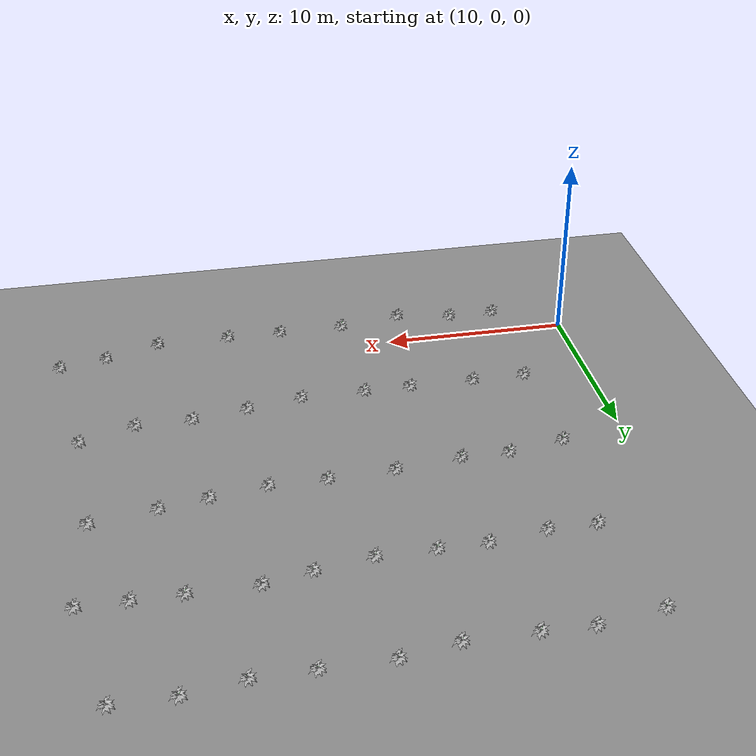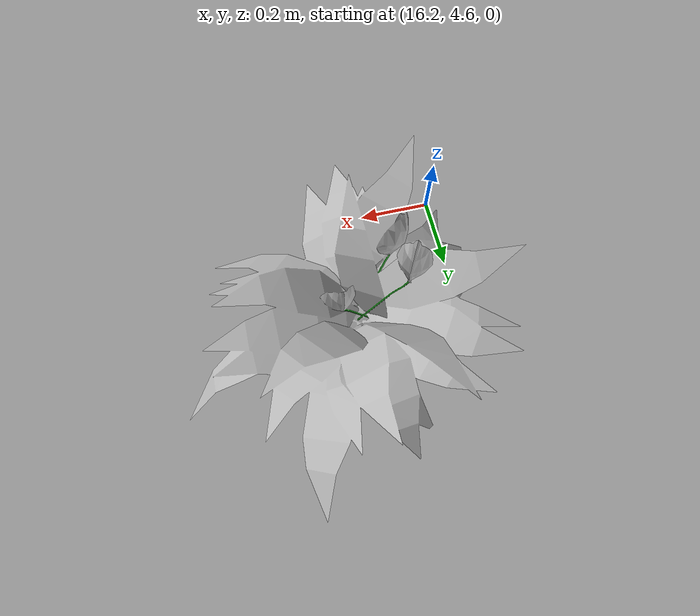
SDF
<sdf version="1.3">
 <world name="default">
  <scene>
   <grid>0</grid>
   <shadows>1</shadows>
   <ambient>0.200000 0.200000 0.200000 1.000000</ambient>
   <background>0.900000 0.900000 0.900000 1.000000</background>
  </scene>
  <light name="sun" type="directional">
   <pose>0.000000 0.000000 10.000000 0.000000 0.000000 0.000000</pose>
   <diffuse>0.800000 0.800000 0.800000 1.000000</diffuse>
   <specular>0.100000 0.100000 0.100000 1.000000</specular>
   <attenuation>
    <range>1000.000000</range>
    <constant>0.900000</constant>
    <linear>0.010000</linear>
    <quadratic>0.001000</quadratic>
   </attenuation>
   <direction>-0.500000 0.500000 -1.000000</direction>
  </light>
  <physics type="ode">
   <update_rate>1000.000000</update_rate>
   <gravity>0.000000 0.000000 -9.800000</gravity>
  </physics>
  <model name="sanca_ground_plane">
   <static>1</static>
   <link name="link">
    <collision name="collision">
     <geometry>
      <plane><normal>0.000000 0.000000 1.000000</normal><size>100.000000 100.000000</size></plane>
     </geometry>
     <surface><friction><ode><mu>100.000000</mu><mu2>50.000000</mu2></ode></friction></surface>
    </collision>
    <visual name="visual">
     <cast_shadows>0</cast_shadows>
     <geometry>
      <plane><normal>0.000000 0.000000 1.000000</normal><size>100.000000 100.000000</size></plane>
     </geometry>
     <material>
      <script><uri>file://media/materials/scripts/gazebo.material</uri><name>Gazebo/Grey</name></script>
     </material>
    </visual>
    <velocity_decay><linear>0.000000</linear><angular>0.000000</angular></velocity_decay>
   </link>
   <pose>-7.000000 38.000000 0.000000 0.000000 0.000000 0.000000</pose>
  </model>
  <model name="Spathaphylum">
   <pose>38.000000 26.482400 0.000000 0.000000 0.000000 0.000000</pose>
   <static>1</static>
   <link name="link">
    <inertial>
     <mass>10.000000</mass>
     <inertia>
      <ixx>1.000000</ixx>
      <ixy>0.000000</ixy>
      <ixz>0.000000</ixz>
      <iyy>1.000000</iyy>
      <iyz>0.000000</iyz>
      <izz>1.000000</izz>
     </inertia>
    </inertial>
    <visual name="visual">
     <geometry><mesh><uri>model://spathaphylum/meshes/Spathaphylum.dae</uri></mesh></geometry>
    </visual>
    <velocity_decay><linear>0.000000</linear><angular>0.000000</angular></velocity_decay>
   </link>
  </model>
  <model name="Spathaphylum_0">
   <pose>35.000000 26.496700 0.000000 0.000000 0.000000 0.000000</pose>
   <static>1</static>
   <link name="link">
    <inertial>
     <mass>10.000000</mass>
     <inertia>
      <ixx>1.000000</ixx>
      <ixy>0.000000</ixy>
      <ixz>0.000000</ixz>
      <iyy>1.000000</iyy>
      <iyz>0.000000</iyz>
      <izz>1.000000</izz>
     </inertia>
    </inertial>
    <visual name="visual">
     <geometry><mesh><uri>model://spathaphylum/meshes/Spathaphylum.dae</uri></mesh></geometry>
    </visual>
    <velocity_decay><linear>0.000000</linear><angular>0.000000</angular></velocity_decay>
   </link>
  </model>
  <model name="Spathaphylum_1">
   <pose>32.000000 26.000000 0.000000 0.000000 0.000000 0.000000</pose>
   <static>1</static>
   <link name="link">
    <inertial>
     <mass>10.000000</mass>
     <inertia>
      <ixx>1.000000</ixx>
      <ixy>0.000000</ixy>
      <ixz>0.000000</ixz>
      <iyy>1.000000</iyy>
      <iyz>0.000000</iyz>
      <izz>1.000000</izz>
     </inertia>
    </inertial>
    <visual name="visual">
     <geometry><mesh><uri>model://spathaphylum/meshes/Spathaphylum.dae</uri></mesh></geometry>
    </visual>
    <velocity_decay><linear>0.000000</linear><angular>0.000000</angular></velocity_decay>
   </link>
  </model>
  <model name="Spathaphylum_2">
   <pose>29.000000 26.000000 0.000000 0.000000 0.000000 0.000000</pose>
   <static>1</static>
   <link name="link">
    <inertial>
     <mass>10.000000</mass>
     <inertia>
      <ixx>1.000000</ixx>
      <ixy>0.000000</ixy>
      <ixz>0.000000</ixz>
      <iyy>1.000000</iyy>
      <iyz>0.000000</iyz>
      <izz>1.000000</izz>
     </inertia>
    </inertial>
    <visual name="visual">
     <geometry><mesh><uri>model://spathaphylum/meshes/Spathaphylum.dae</uri></mesh></geometry>
    </visual>
    <velocity_decay><linear>0.000000</linear><angular>0.000000</angular></velocity_decay>
   </link>
  </model>
  <model name="Spathaphylum_3">
   <pose>25.486800 26.000000 0.000000 0.000000 0.000000 0.000000</pose>
   <static>1</static>
   <link name="link">
    <inertial>
     <mass>10.000000</mass>
     <inertia>
      <ixx>1.000000</ixx>
      <ixy>0.000000</ixy>
      <ixz>0.000000</ixz>
      <iyy>1.000000</iyy>
      <iyz>0.000000</iyz>
      <izz>1.000000</izz>
     </inertia>
    </inertial>
    <visual name="visual">
     <geometry><mesh><uri>model://spathaphylum/meshes/Spathaphylum.dae</uri></mesh></geometry>
    </visual>
    <velocity_decay><linear>0.000000</linear><angular>0.000000</angular></velocity_decay>
   </link>
  </model>
  <model name="Spathaphylum_4">
   <pose>22.556600 25.467600 0.000000 0.000000 0.000000 0.000000</pose>
   <static>1</static>
   <link name="link">
    <inertial>
     <mass>10.000000</mass>
     <inertia>
      <ixx>1.000000</ixx>
      <ixy>0.000000</ixy>
      <ixz>0.000000</ixz>
      <iyy>1.000000</iyy>
      <iyz>0.000000</iyz>
      <izz>1.000000</izz>
     </inertia>
    </inertial>
    <visual name="visual">
     <geometry><mesh><uri>model://spathaphylum/meshes/Spathaphylum.dae</uri></mesh></geometry>
    </visual>
    <velocity_decay><linear>0.000000</linear><angular>0.000000</angular></velocity_decay>
   </link>
  </model>
  <model name="Spathaphylum_5">
   <pose>19.000000 25.484000 0.000000 0.000000 0.000000 0.000000</pose>
   <static>1</static>
   <link name="link">
    <inertial>
     <mass>10.000000</mass>
     <inertia>
      <ixx>1.000000</ixx>
      <ixy>0.000000</ixy>
      <ixz>0.000000</ixz>
      <iyy>1.000000</iyy>
      <iyz>0.000000</iyz>
      <izz>1.000000</izz>
     </inertia>
    </inertial>
    <visual name="visual">
     <geometry><mesh><uri>model://spathaphylum/meshes/Spathaphylum.dae</uri></mesh></geometry>
    </visual>
    <velocity_decay><linear>0.000000</linear><angular>0.000000</angular></velocity_decay>
   </link>
  </model>
  <model name="Spathaphylum_6">
   <pose>16.447800 25.581200 0.000000 0.000000 0.000000 0.000000</pose>
   <static>1</static>
   <link name="link">
    <inertial>
     <mass>10.000000</mass>
     <inertia>
      <ixx>1.000000</ixx>
      <ixy>0.000000</ixy>
      <ixz>0.000000</ixz>
      <iyy>1.000000</iyy>
      <iyz>0.000000</iyz>
      <izz>1.000000</izz>
     </inertia>
    </inertial>
    <visual name="visual">
     <geometry><mesh><uri>model://spathaphylum/meshes/Spathaphylum.dae</uri></mesh></geometry>
    </visual>
    <velocity_decay><linear>0.000000</linear><angular>0.000000</angular></velocity_decay>
   </link>
  </model>
  <model name="Spathaphylum_7">
   <pose>13.000000 25.000000 0.000000 0.000000 0.000000 0.000000</pose>
   <static>1</static>
   <link name="link">
    <inertial>
     <mass>10.000000</mass>
     <inertia>
      <ixx>1.000000</ixx>
      <ixy>0.000000</ixy>
      <ixz>0.000000</ixz>
      <iyy>1.000000</iyy>
      <iyz>0.000000</iyz>
      <izz>1.000000</izz>
     </inertia>
    </inertial>
    <visual name="visual">
     <geometry><mesh><uri>model://spathaphylum/meshes/Spathaphylum.dae</uri></mesh></geometry>
    </visual>
    <velocity_decay><linear>0.000000</linear><angular>0.000000</angular></velocity_decay>
   </link>
  </model>
  <model name="Spathaphylum_8">
   <pose>14.000000 18.564600 0.000000 0.000000 0.000000 0.000000</pose>
   <static>1</static>
   <link name="link">
    <inertial>
     <mass>10.000000</mass>
     <inertia>
      <ixx>1.000000</ixx>
      <ixy>0.000000</ixy>
      <ixz>0.000000</ixz>
      <iyy>1.000000</iyy>
      <iyz>0.000000</iyz>
      <izz>1.000000</izz>
     </inertia>
    </inertial>
    <visual name="visual">
     <geometry><mesh><uri>model://spathaphylum/meshes/Spathaphylum.dae</uri></mesh></geometry>
    </visual>
    <velocity_decay><linear>0.000000</linear><angular>0.000000</angular></velocity_decay>
   </link>
  </model>
  <model name="Spathaphylum_9">
   <pose>16.495100 18.550600 0.000000 0.000000 0.000000 0.000000</pose>
   <static>1</static>
   <link name="link">
    <inertial>
     <mass>10.000000</mass>
     <inertia>
      <ixx>1.000000</ixx>
      <ixy>0.000000</ixy>
      <ixz>0.000000</ixz>
      <iyy>1.000000</iyy>
      <iyz>0.000000</iyz>
      <izz>1.000000</izz>
     </inertia>
    </inertial>
    <visual name="visual">
     <geometry><mesh><uri>model://spathaphylum/meshes/Spathaphylum.dae</uri></mesh></geometry>
    </visual>
    <velocity_decay><linear>0.000000</linear><angular>0.000000</angular></velocity_decay>
   </link>
  </model>
  <model name="Spathaphylum_10">
   <pose>19.508700 19.000000 0.000000 0.000000 0.000000 0.000000</pose>
   <static>1</static>
   <link name="link">
    <inertial>
     <mass>10.000000</mass>
     <inertia>
      <ixx>1.000000</ixx>
      <ixy>0.000000</ixy>
      <ixz>0.000000</ixz>
      <iyy>1.000000</iyy>
      <iyz>0.000000</iyz>
      <izz>1.000000</izz>
     </inertia>
    </inertial>
    <visual name="visual">
     <geometry><mesh><uri>model://spathaphylum/meshes/Spathaphylum.dae</uri></mesh></geometry>
    </visual>
    <velocity_decay><linear>0.000000</linear><angular>0.000000</angular></velocity_decay>
   </link>
  </model>
  <model name="Spathaphylum_11">
   <pose>22.000000 19.000000 0.000000 0.000000 0.000000 0.000000</pose>
   <static>1</static>
   <link name="link">
    <inertial>
     <mass>10.000000</mass>
     <inertia>
      <ixx>1.000000</ixx>
      <ixy>0.000000</ixy>
      <ixz>0.000000</ixz>
      <iyy>1.000000</iyy>
      <iyz>0.000000</iyz>
      <izz>1.000000</izz>
     </inertia>
    </inertial>
    <visual name="visual">
     <geometry><mesh><uri>model://spathaphylum/meshes/Spathaphylum.dae</uri></mesh></geometry>
    </visual>
    <velocity_decay><linear>0.000000</linear><angular>0.000000</angular></velocity_decay>
   </link>
  </model>
  <model name="Spathaphylum_12">
   <pose>25.000000 19.000000 0.000000 0.000000 0.000000 0.000000</pose>
   <static>1</static>
   <link name="link">
    <inertial>
     <mass>10.000000</mass>
     <inertia>
      <ixx>1.000000</ixx>
      <ixy>0.000000</ixy>
      <ixz>0.000000</ixz>
      <iyy>1.000000</iyy>
      <iyz>0.000000</iyz>
      <izz>1.000000</izz>
     </inertia>
    </inertial>
    <visual name="visual">
     <geometry><mesh><uri>model://spathaphylum/meshes/Spathaphylum.dae</uri></mesh></geometry>
    </visual>
    <velocity_decay><linear>0.000000</linear><angular>0.000000</angular></velocity_decay>
   </link>
  </model>
  <model name="Spathaphylum_13">
   <pose>28.000000 19.497700 0.000000 0.000000 0.000000 0.000000</pose>
   <static>1</static>
   <link name="link">
    <inertial>
     <mass>10.000000</mass>
     <inertia>
      <ixx>1.000000</ixx>
      <ixy>0.000000</ixy>
      <ixz>0.000000</ixz>
      <iyy>1.000000</iyy>
      <iyz>0.000000</iyz>
      <izz>1.000000</izz>
     </inertia>
    </inertial>
    <visual name="visual">
     <geometry><mesh><uri>model://spathaphylum/meshes/Spathaphylum.dae</uri></mesh></geometry>
    </visual>
    <velocity_decay><linear>0.000000</linear><angular>0.000000</angular></velocity_decay>
   </link>
  </model>
  <model name="Spathaphylum_14">
   <pose>30.479400 20.000000 0.000000 0.000000 0.000000 0.000000</pose>
   <static>1</static>
   <link name="link">
    <inertial>
     <mass>10.000000</mass>
     <inertia>
      <ixx>1.000000</ixx>
      <ixy>0.000000</ixy>
      <ixz>0.000000</ixz>
      <iyy>1.000000</iyy>
      <iyz>0.000000</iyz>
      <izz>1.000000</izz>
     </inertia>
    </inertial>
    <visual name="visual">
     <geometry><mesh><uri>model://spathaphylum/meshes/Spathaphylum.dae</uri></mesh></geometry>
    </visual>
    <velocity_decay><linear>0.000000</linear><angular>0.000000</angular></velocity_decay>
   </link>
  </model>
  <model name="Spathaphylum_15">
   <pose>34.000000 20.000000 0.000000 0.000000 0.000000 0.000000</pose>
   <static>1</static>
   <link name="link">
    <inertial>
     <mass>10.000000</mass>
     <inertia>
      <ixx>1.000000</ixx>
      <ixy>0.000000</ixy>
      <ixz>0.000000</ixz>
      <iyy>1.000000</iyy>
      <iyz>0.000000</iyz>
      <izz>1.000000</izz>
     </inertia>
    </inertial>
    <visual name="visual">
     <geometry><mesh><uri>model://spathaphylum/meshes/Spathaphylum.dae</uri></mesh></geometry>
    </visual>
    <velocity_decay><linear>0.000000</linear><angular>0.000000</angular></velocity_decay>
   </link>
  </model>
  <model name="Spathaphylum_16">
   <pose>36.508000 20.000000 0.000000 0.000000 0.000000 0.000000</pose>
   <static>1</static>
   <link name="link">
    <inertial>
     <mass>10.000000</mass>
     <inertia>
      <ixx>1.000000</ixx>
      <ixy>0.000000</ixy>
      <ixz>0.000000</ixz>
      <iyy>1.000000</iyy>
      <iyz>0.000000</iyz>
      <izz>1.000000</izz>
     </inertia>
    </inertial>
    <visual name="visual">
     <geometry><mesh><uri>model://spathaphylum/meshes/Spathaphylum.dae</uri></mesh></geometry>
    </visual>
    <velocity_decay><linear>0.000000</linear><angular>0.000000</angular></velocity_decay>
   </link>
  </model>
  <model name="Spathaphylum_17">
   <pose>39.000000 20.000000 0.000000 0.000000 0.000000 0.000000</pose>
   <static>1</static>
   <link name="link">
    <inertial>
     <mass>10.000000</mass>
     <inertia>
      <ixx>1.000000</ixx>
      <ixy>0.000000</ixy>
      <ixz>0.000000</ixz>
      <iyy>1.000000</iyy>
      <iyz>0.000000</iyz>
      <izz>1.000000</izz>
     </inertia>
    </inertial>
    <visual name="visual">
     <geometry><mesh><uri>model://spathaphylum/meshes/Spathaphylum.dae</uri></mesh></geometry>
    </visual>
    <velocity_decay><linear>0.000000</linear><angular>0.000000</angular></velocity_decay>
   </link>
  </model>
  <model name="Spathaphylum_18">
   <pose>38.000000 14.000000 0.000000 0.000000 0.000000 0.000000</pose>
   <static>1</static>
   <link name="link">
    <inertial>
     <mass>10.000000</mass>
     <inertia>
      <ixx>1.000000</ixx>
      <ixy>0.000000</ixy>
      <ixz>0.000000</ixz>
      <iyy>1.000000</iyy>
      <iyz>0.000000</iyz>
      <izz>1.000000</izz>
     </inertia>
    </inertial>
    <visual name="visual">
     <geometry><mesh><uri>model://spathaphylum/meshes/Spathaphylum.dae</uri></mesh></geometry>
    </visual>
    <velocity_decay><linear>0.000000</linear><angular>0.000000</angular></velocity_decay>
   </link>
  </model>
  <model name="Spathaphylum_19">
   <pose>34.548400 13.437600 0.000000 0.000000 0.000000 0.000000</pose>
   <static>1</static>
   <link name="link">
    <inertial>
     <mass>10.000000</mass>
     <inertia>
      <ixx>1.000000</ixx>
      <ixy>0.000000</ixy>
      <ixz>0.000000</ixz>
      <iyy>1.000000</iyy>
      <iyz>0.000000</iyz>
      <izz>1.000000</izz>
     </inertia>
    </inertial>
    <visual name="visual">
     <geometry><mesh><uri>model://spathaphylum/meshes/Spathaphylum.dae</uri></mesh></geometry>
    </visual>
    <velocity_decay><linear>0.000000</linear><angular>0.000000</angular></velocity_decay>
   </link>
  </model>
  <model name="Spathaphylum_20">
   <pose>32.000000 13.000000 0.000000 0.000000 0.000000 0.000000</pose>
   <static>1</static>
   <link name="link">
    <inertial>
     <mass>10.000000</mass>
     <inertia>
      <ixx>1.000000</ixx>
      <ixy>0.000000</ixy>
      <ixz>0.000000</ixz>
      <iyy>1.000000</iyy>
      <iyz>0.000000</iyz>
      <izz>1.000000</izz>
     </inertia>
    </inertial>
    <visual name="visual">
     <geometry><mesh><uri>model://spathaphylum/meshes/Spathaphylum.dae</uri></mesh></geometry>
    </visual>
    <velocity_decay><linear>0.000000</linear><angular>0.000000</angular></velocity_decay>
   </link>
  </model>
  <model name="Spathaphylum_21">
   <pose>29.000000 12.544800 0.000000 0.000000 0.000000 0.000000</pose>
   <static>1</static>
   <link name="link">
    <inertial>
     <mass>10.000000</mass>
     <inertia>
      <ixx>1.000000</ixx>
      <ixy>0.000000</ixy>
      <ixz>0.000000</ixz>
      <iyy>1.000000</iyy>
      <iyz>0.000000</iyz>
      <izz>1.000000</izz>
     </inertia>
    </inertial>
    <visual name="visual">
     <geometry><mesh><uri>model://spathaphylum/meshes/Spathaphylum.dae</uri></mesh></geometry>
    </visual>
    <velocity_decay><linear>0.000000</linear><angular>0.000000</angular></velocity_decay>
   </link>
  </model>
  <model name="Spathaphylum_22">
   <pose>26.000000 12.561700 0.000000 0.000000 0.000000 0.000000</pose>
   <static>1</static>
   <link name="link">
    <inertial>
     <mass>10.000000</mass>
     <inertia>
      <ixx>1.000000</ixx>
      <ixy>0.000000</ixy>
      <ixz>0.000000</ixz>
      <iyy>1.000000</iyy>
      <iyz>0.000000</iyz>
      <izz>1.000000</izz>
     </inertia>
    </inertial>
    <visual name="visual">
     <geometry><mesh><uri>model://spathaphylum/meshes/Spathaphylum.dae</uri></mesh></geometry>
    </visual>
    <velocity_decay><linear>0.000000</linear><angular>0.000000</angular></velocity_decay>
   </link>
  </model>
  <model name="Spathaphylum_23">
   <pose>22.488900 12.410500 0.000000 0.000000 0.000000 0.000000</pose>
   <static>1</static>
   <link name="link">
    <inertial>
     <mass>10.000000</mass>
     <inertia>
      <ixx>1.000000</ixx>
      <ixy>0.000000</ixy>
      <ixz>0.000000</ixz>
      <iyy>1.000000</iyy>
      <iyz>0.000000</iyz>
      <izz>1.000000</izz>
     </inertia>
    </inertial>
    <visual name="visual">
     <geometry><mesh><uri>model://spathaphylum/meshes/Spathaphylum.dae</uri></mesh></geometry>
    </visual>
    <velocity_decay><linear>0.000000</linear><angular>0.000000</angular></velocity_decay>
   </link>
  </model>
  <model name="Spathaphylum_24">
   <pose>19.000000 12.000000 0.000000 0.000000 0.000000 0.000000</pose>
   <static>1</static>
   <link name="link">
    <inertial>
     <mass>10.000000</mass>
     <inertia>
      <ixx>1.000000</ixx>
      <ixy>0.000000</ixy>
      <ixz>0.000000</ixz>
      <iyy>1.000000</iyy>
      <iyz>0.000000</iyz>
      <izz>1.000000</izz>
     </inertia>
    </inertial>
    <visual name="visual">
     <geometry><mesh><uri>model://spathaphylum/meshes/Spathaphylum.dae</uri></mesh></geometry>
    </visual>
    <velocity_decay><linear>0.000000</linear><angular>0.000000</angular></velocity_decay>
   </link>
  </model>
  <model name="Spathaphylum_25">
   <pose>16.460400 12.000000 0.000000 0.000000 0.000000 0.000000</pose>
   <static>1</static>
   <link name="link">
    <inertial>
     <mass>10.000000</mass>
     <inertia>
      <ixx>1.000000</ixx>
      <ixy>0.000000</ixy>
      <ixz>0.000000</ixz>
      <iyy>1.000000</iyy>
      <iyz>0.000000</iyz>
      <izz>1.000000</izz>
     </inertia>
    </inertial>
    <visual name="visual">
     <geometry><mesh><uri>model://spathaphylum/meshes/Spathaphylum.dae</uri></mesh></geometry>
    </visual>
    <velocity_decay><linear>0.000000</linear><angular>0.000000</angular></velocity_decay>
   </link>
  </model>
  <model name="Spathaphylum_26">
   <pose>13.445300 11.452300 0.000000 0.000000 0.000000 0.000000</pose>
   <static>1</static>
   <link name="link">
    <inertial>
     <mass>10.000000</mass>
     <inertia>
      <ixx>1.000000</ixx>
      <ixy>0.000000</ixy>
      <ixz>0.000000</ixz>
      <iyy>1.000000</iyy>
      <iyz>0.000000</iyz>
      <izz>1.000000</izz>
     </inertia>
    </inertial>
    <visual name="visual">
     <geometry><mesh><uri>model://spathaphylum/meshes/Spathaphylum.dae</uri></mesh></geometry>
    </visual>
    <velocity_decay><linear>0.000000</linear><angular>0.000000</angular></velocity_decay>
   </link>
  </model>
  <model name="Spathaphylum_27">
   <pose>13.580100 5.000000 0.000000 0.000000 0.000000 0.000000</pose>
   <static>1</static>
   <link name="link">
    <inertial>
     <mass>10.000000</mass>
     <inertia>
      <ixx>1.000000</ixx>
      <ixy>0.000000</ixy>
      <ixz>0.000000</ixz>
      <iyy>1.000000</iyy>
      <iyz>0.000000</iyz>
      <izz>1.000000</izz>
     </inertia>
    </inertial>
    <visual name="visual">
     <geometry><mesh><uri>model://spathaphylum/meshes/Spathaphylum.dae</uri></mesh></geometry>
    </visual>
    <velocity_decay><linear>0.000000</linear><angular>0.000000</angular></velocity_decay>
   </link>
  </model>
  <model name="Spathaphylum_28">
   <pose>16.508900 5.000000 0.000000 0.000000 0.000000 0.000000</pose>
   <static>1</static>
   <link name="link">
    <inertial>
     <mass>10.000000</mass>
     <inertia>
      <ixx>1.000000</ixx>
      <ixy>0.000000</ixy>
      <ixz>0.000000</ixz>
      <iyy>1.000000</iyy>
      <iyz>0.000000</iyz>
      <izz>1.000000</izz>
     </inertia>
    </inertial>
    <visual name="visual">
     <geometry><mesh><uri>model://spathaphylum/meshes/Spathaphylum.dae</uri></mesh></geometry>
    </visual>
    <velocity_decay><linear>0.000000</linear><angular>0.000000</angular></velocity_decay>
   </link>
  </model>
  <model name="Spathaphylum_29">
   <pose>20.000000 5.000000 0.000000 0.000000 0.000000 0.000000</pose>
   <static>1</static>
   <link name="link">
    <inertial>
     <mass>10.000000</mass>
     <inertia>
      <ixx>1.000000</ixx>
      <ixy>0.000000</ixy>
      <ixz>0.000000</ixz>
      <iyy>1.000000</iyy>
      <iyz>0.000000</iyz>
      <izz>1.000000</izz>
     </inertia>
    </inertial>
    <visual name="visual">
     <geometry><mesh><uri>model://spathaphylum/meshes/Spathaphylum.dae</uri></mesh></geometry>
    </visual>
    <velocity_decay><linear>0.000000</linear><angular>0.000000</angular></velocity_decay>
   </link>
  </model>
  <model name="Spathaphylum_30">
   <pose>22.536200 5.000000 0.000000 0.000000 0.000000 0.000000</pose>
   <static>1</static>
   <link name="link">
    <inertial>
     <mass>10.000000</mass>
     <inertia>
      <ixx>1.000000</ixx>
      <ixy>0.000000</ixy>
      <ixz>0.000000</ixz>
      <iyy>1.000000</iyy>
      <iyz>0.000000</iyz>
      <izz>1.000000</izz>
     </inertia>
    </inertial>
    <visual name="visual">
     <geometry><mesh><uri>model://spathaphylum/meshes/Spathaphylum.dae</uri></mesh></geometry>
    </visual>
    <velocity_decay><linear>0.000000</linear><angular>0.000000</angular></velocity_decay>
   </link>
  </model>
  <model name="Spathaphylum_31">
   <pose>26.000000 5.000000 0.000000 0.000000 0.000000 0.000000</pose>
   <static>1</static>
   <link name="link">
    <inertial>
     <mass>10.000000</mass>
     <inertia>
      <ixx>1.000000</ixx>
      <ixy>0.000000</ixy>
      <ixz>0.000000</ixz>
      <iyy>1.000000</iyy>
      <iyz>0.000000</iyz>
      <izz>1.000000</izz>
     </inertia>
    </inertial>
    <visual name="visual">
     <geometry><mesh><uri>model://spathaphylum/meshes/Spathaphylum.dae</uri></mesh></geometry>
    </visual>
    <velocity_decay><linear>0.000000</linear><angular>0.000000</angular></velocity_decay>
   </link>
  </model>
  <model name="Spathaphylum_32">
   <pose>29.000000 5.514300 0.000000 0.000000 0.000000 0.000000</pose>
   <static>1</static>
   <link name="link">
    <inertial>
     <mass>10.000000</mass>
     <inertia>
      <ixx>1.000000</ixx>
      <ixy>0.000000</ixy>
      <ixz>0.000000</ixz>
      <iyy>1.000000</iyy>
      <iyz>0.000000</iyz>
      <izz>1.000000</izz>
     </inertia>
    </inertial>
    <visual name="visual">
     <geometry><mesh><uri>model://spathaphylum/meshes/Spathaphylum.dae</uri></mesh></geometry>
    </visual>
    <velocity_decay><linear>0.000000</linear><angular>0.000000</angular></velocity_decay>
   </link>
  </model>
  <model name="Spathaphylum_33">
   <pose>32.000000 6.000000 0.000000 0.000000 0.000000 0.000000</pose>
   <static>1</static>
   <link name="link">
    <inertial>
     <mass>10.000000</mass>
     <inertia>
      <ixx>1.000000</ixx>
      <ixy>0.000000</ixy>
      <ixz>0.000000</ixz>
      <iyy>1.000000</iyy>
      <iyz>0.000000</iyz>
      <izz>1.000000</izz>
     </inertia>
    </inertial>
    <visual name="visual">
     <geometry><mesh><uri>model://spathaphylum/meshes/Spathaphylum.dae</uri></mesh></geometry>
    </visual>
    <velocity_decay><linear>0.000000</linear><angular>0.000000</angular></velocity_decay>
   </link>
  </model>
  <model name="Spathaphylum_34">
   <pose>35.000000 6.000000 0.000000 0.000000 0.000000 0.000000</pose>
   <static>1</static>
   <link name="link">
    <inertial>
     <mass>10.000000</mass>
     <inertia>
      <ixx>1.000000</ixx>
      <ixy>0.000000</ixy>
      <ixz>0.000000</ixz>
      <iyy>1.000000</iyy>
      <iyz>0.000000</iyz>
      <izz>1.000000</izz>
     </inertia>
    </inertial>
    <visual name="visual">
     <geometry><mesh><uri>model://spathaphylum/meshes/Spathaphylum.dae</uri></mesh></geometry>
    </visual>
    <velocity_decay><linear>0.000000</linear><angular>0.000000</angular></velocity_decay>
   </link>
  </model>
  <model name="Spathaphylum_35">
   <pose>38.000000 7.000000 0.000000 0.000000 0.000000 0.000000</pose>
   <static>1</static>
   <link name="link">
    <inertial>
     <mass>10.000000</mass>
     <inertia>
      <ixx>1.000000</ixx>
      <ixy>0.000000</ixy>
      <ixz>0.000000</ixz>
      <iyy>1.000000</iyy>
      <iyz>0.000000</iyz>
      <izz>1.000000</izz>
     </inertia>
    </inertial>
    <visual name="visual">
     <geometry><mesh><uri>model://spathaphylum/meshes/Spathaphylum.dae</uri></mesh></geometry>
    </visual>
    <velocity_decay><linear>0.000000</linear><angular>0.000000</angular></velocity_decay>
   </link>
  </model>
  <model name="Spathaphylum_36">
   <pose>38.579500 -0.480361 0.000000 0.000000 0.000000 0.000000</pose>
   <static>1</static>
   <link name="link">
    <inertial>
     <mass>10.000000</mass>
     <inertia>
      <ixx>1.000000</ixx>
      <ixy>0.000000</ixy>
      <ixz>0.000000</ixz>
      <iyy>1.000000</iyy>
      <iyz>0.000000</iyz>
      <izz>1.000000</izz>
     </inertia>
    </inertial>
    <visual name="visual">
     <geometry><mesh><uri>model://spathaphylum/meshes/Spathaphylum.dae</uri></mesh></geometry>
    </visual>
    <velocity_decay><linear>0.000000</linear><angular>0.000000</angular></velocity_decay>
   </link>
  </model>
  <model name="Spathaphylum_37">
   <pose>36.000000 -1.000000 0.000000 0.000000 0.000000 0.000000</pose>
   <static>1</static>
   <link name="link">
    <inertial>
     <mass>10.000000</mass>
     <inertia>
      <ixx>1.000000</ixx>
      <ixy>0.000000</ixy>
      <ixz>0.000000</ixz>
      <iyy>1.000000</iyy>
      <iyz>0.000000</iyz>
      <izz>1.000000</izz>
     </inertia>
    </inertial>
    <visual name="visual">
     <geometry><mesh><uri>model://spathaphylum/meshes/Spathaphylum.dae</uri></mesh></geometry>
    </visual>
    <velocity_decay><linear>0.000000</linear><angular>0.000000</angular></velocity_decay>
   </link>
  </model>
  <model name="Spathaphylum_38">
   <pose>33.000000 -2.000000 0.000000 0.000000 0.000000 0.000000</pose>
   <static>1</static>
   <link name="link">
    <inertial>
     <mass>10.000000</mass>
     <inertia>
      <ixx>1.000000</ixx>
      <ixy>0.000000</ixy>
      <ixz>0.000000</ixz>
      <iyy>1.000000</iyy>
      <iyz>0.000000</iyz>
      <izz>1.000000</izz>
     </inertia>
    </inertial>
    <visual name="visual">
     <geometry><mesh><uri>model://spathaphylum/meshes/Spathaphylum.dae</uri></mesh></geometry>
    </visual>
    <velocity_decay><linear>0.000000</linear><angular>0.000000</angular></velocity_decay>
   </link>
  </model>
  <model name="Spathaphylum_39">
   <pose>29.000000 -2.000000 0.000000 0.000000 0.000000 0.000000</pose>
   <static>1</static>
   <link name="link">
    <inertial>
     <mass>10.000000</mass>
     <inertia>
      <ixx>1.000000</ixx>
      <ixy>0.000000</ixy>
      <ixz>0.000000</ixz>
      <iyy>1.000000</iyy>
      <iyz>0.000000</iyz>
      <izz>1.000000</izz>
     </inertia>
    </inertial>
    <visual name="visual">
     <geometry><mesh><uri>model://spathaphylum/meshes/Spathaphylum.dae</uri></mesh></geometry>
    </visual>
    <velocity_decay><linear>0.000000</linear><angular>0.000000</angular></velocity_decay>
   </link>
  </model>
  <model name="Spathaphylum_40">
   <pose>26.000000 -2.000000 0.000000 0.000000 0.000000 0.000000</pose>
   <static>1</static>
   <link name="link">
    <inertial>
     <mass>10.000000</mass>
     <inertia>
      <ixx>1.000000</ixx>
      <ixy>0.000000</ixy>
      <ixz>0.000000</ixz>
      <iyy>1.000000</iyy>
      <iyz>0.000000</iyz>
      <izz>1.000000</izz>
     </inertia>
    </inertial>
    <visual name="visual">
     <geometry><mesh><uri>model://spathaphylum/meshes/Spathaphylum.dae</uri></mesh></geometry>
    </visual>
    <velocity_decay><linear>0.000000</linear><angular>0.000000</angular></velocity_decay>
   </link>
  </model>
  <model name="Spathaphylum_41">
   <pose>22.415200 -2.000000 0.000000 0.000000 0.000000 0.000000</pose>
   <static>1</static>
   <link name="link">
    <inertial>
     <mass>10.000000</mass>
     <inertia>
      <ixx>1.000000</ixx>
      <ixy>0.000000</ixy>
      <ixz>0.000000</ixz>
      <iyy>1.000000</iyy>
      <iyz>0.000000</iyz>
      <izz>1.000000</izz>
     </inertia>
    </inertial>
    <visual name="visual">
     <geometry><mesh><uri>model://spathaphylum/meshes/Spathaphylum.dae</uri></mesh></geometry>
    </visual>
    <velocity_decay><linear>0.000000</linear><angular>0.000000</angular></velocity_decay>
   </link>
  </model>
  <model name="Spathaphylum_42">
   <pose>19.000000 -2.553440 0.000000 0.000000 0.000000 0.000000</pose>
   <static>1</static>
   <link name="link">
    <inertial>
     <mass>10.000000</mass>
     <inertia>
      <ixx>1.000000</ixx>
      <ixy>0.000000</ixy>
      <ixz>0.000000</ixz>
      <iyy>1.000000</iyy>
      <iyz>0.000000</iyz>
      <izz>1.000000</izz>
     </inertia>
    </inertial>
    <visual name="visual">
     <geometry><mesh><uri>model://spathaphylum/meshes/Spathaphylum.dae</uri></mesh></geometry>
    </visual>
    <velocity_decay><linear>0.000000</linear><angular>0.000000</angular></velocity_decay>
   </link>
  </model>
  <model name="Spathaphylum_43">
   <pose>16.000000 -2.000000 0.000000 0.000000 0.000000 0.000000</pose>
   <static>1</static>
   <link name="link">
    <inertial>
     <mass>10.000000</mass>
     <inertia>
      <ixx>1.000000</ixx>
      <ixy>0.000000</ixy>
      <ixz>0.000000</ixz>
      <iyy>1.000000</iyy>
      <iyz>0.000000</iyz>
      <izz>1.000000</izz>
     </inertia>
    </inertial>
    <visual name="visual">
     <geometry><mesh><uri>model://spathaphylum/meshes/Spathaphylum.dae</uri></mesh></geometry>
    </visual>
    <velocity_decay><linear>0.000000</linear><angular>0.000000</angular></velocity_decay>
   </link>
  </model>
  <model name="Spathaphylum_44">
   <pose>13.459100 -2.000000 0.000000 0.000000 0.000000 0.000000</pose>
   <static>1</static>
   <link name="link">
    <inertial>
     <mass>10.000000</mass>
     <inertia>
      <ixx>1.000000</ixx>
      <ixy>0.000000</ixy>
      <ixz>0.000000</ixz>
      <iyy>1.000000</iyy>
      <iyz>0.000000</iyz>
      <izz>1.000000</izz>
     </inertia>
    </inertial>
    <visual name="visual">
     <geometry><mesh><uri>model://spathaphylum/meshes/Spathaphylum.dae</uri></mesh></geometry>
    </visual>
    <velocity_decay><linear>0.000000</linear><angular>0.000000</angular></velocity_decay>
   </link>
  </model>
 </world>
</sdf>
